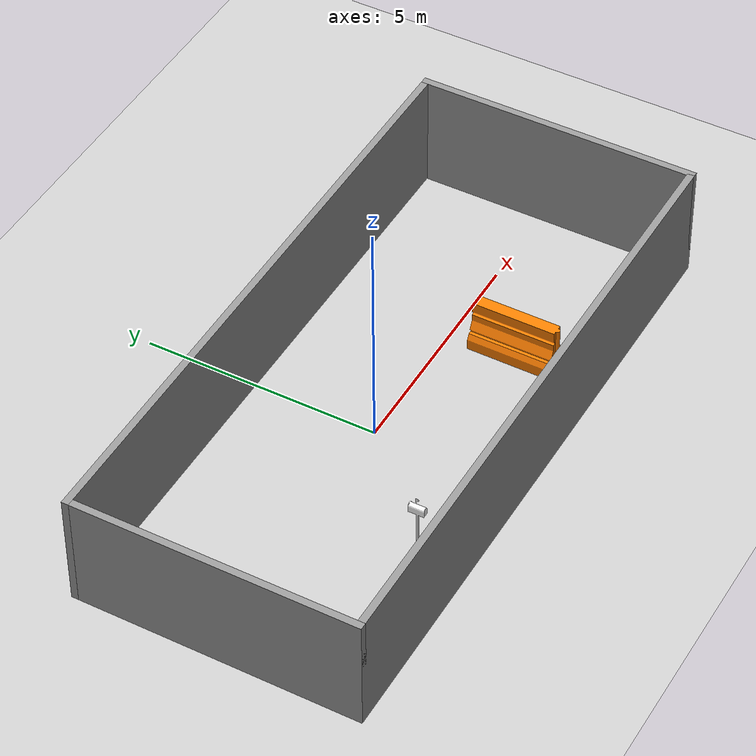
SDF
<sdf version="1.7">
 <world name="default">
  <light name="sun" type="directional">
   <pose>0 0 10 0 -0 0</pose>
   <diffuse>0.8 0.8 0.8 1</diffuse>
   <specular>0.2 0.2 0.2 1</specular>
   <attenuation>
    <range>1000</range>
    <constant>0.9</constant>
    <linear>0.01</linear>
    <quadratic>0.001</quadratic>
   </attenuation>
   <direction>-0.5 0.1 -0.9</direction>
   <spot><inner_angle>0</inner_angle><outer_angle>0</outer_angle><falloff>0</falloff></spot>
  </light>
  <model name="ground_plane">
   <static>1</static>
   <link name="link">
    <collision name="collision">
     <geometry><plane><normal>0 0 1</normal><size>100 100</size></plane></geometry>
     <surface>
      <contact><collide_bitmask>65535</collide_bitmask></contact>
      <friction><ode><mu>100</mu><mu2>50</mu2></ode></friction>
     </surface>
    </collision>
    <visual name="visual">
     <cast_shadows>0</cast_shadows>
     <geometry><plane><normal>0 0 1</normal><size>100 100</size></plane></geometry>
     <material>
      <script><uri>file://media/materials/scripts/gazebo.material</uri><name>Gazebo/Grey</name></script>
     </material>
    </visual>
   </link>
  </model>
  <gravity>0 0 -9.8</gravity>
  <magnetic_field>6e-06 2.3e-05 -4.2e-05</magnetic_field>
  <atmosphere type="adiabatic"/>
  <physics type="ode">
   <max_step_size>0.001</max_step_size>
   <real_time_factor>1</real_time_factor>
   <real_time_update_rate>1000</real_time_update_rate>
  </physics>
  <scene><ambient>0.4 0.4 0.4 1</ambient><background>0.7 0.7 0.7 1</background><shadows>1</shadows></scene>
  <spherical_coordinates>
   <surface_model>EARTH_WGS84</surface_model>
   <latitude_deg>0</latitude_deg>
   <longitude_deg>0</longitude_deg>
   <elevation>0</elevation>
   <heading_deg>0</heading_deg>
  </spherical_coordinates>
  <model name="NOMAL">
   <pose>0.420608 -0.234741 0 0 -0 0</pose>
   <link name="Wall_4">
    <collision name="Wall_4_Collision">
     <geometry><box><size>6 0.15 2.5</size></box></geometry>
     <pose>0 0 1.25 0 -0 0</pose>
    </collision>
    <visual name="Wall_4_Visual">
     <pose>0 0 1.25 0 -0 0</pose>
     <geometry><box><size>6 0.15 2.5</size></box></geometry>
     <material>
      <script><uri>file://media/materials/scripts/gazebo.material</uri><name>Gazebo/Grey</name></script>
      <ambient>1 1 1 1</ambient>
     </material>
     <meta><layer>0</layer></meta>
    </visual>
    <pose>-6.55 0 0 0 -0 -1.5708</pose>
   </link>
   <link name="Wall_5">
    <collision name="Wall_5_Collision">
     <geometry><box><size>13.25 0.15 2.5</size></box></geometry>
     <pose>0 0 1.25 0 -0 0</pose>
    </collision>
    <visual name="Wall_5_Visual">
     <pose>0 0 1.25 0 -0 0</pose>
     <geometry><box><size>13.25 0.15 2.5</size></box></geometry>
     <material>
      <script><uri>file://media/materials/scripts/gazebo.material</uri><name>Gazebo/Grey</name></script>
      <ambient>1 1 1 1</ambient>
     </material>
     <meta><layer>0</layer></meta>
    </visual>
    <pose>0 -2.925 0 0 -0 0</pose>
   </link>
   <link name="Wall_6">
    <collision name="Wall_6_Collision">
     <geometry><box><size>6 0.15 2.5</size></box></geometry>
     <pose>0 0 1.25 0 -0 0</pose>
    </collision>
    <visual name="Wall_6_Visual">
     <pose>0 0 1.25 0 -0 0</pose>
     <geometry><box><size>6 0.15 2.5</size></box></geometry>
     <material>
      <script><uri>file://media/materials/scripts/gazebo.material</uri><name>Gazebo/Grey</name></script>
      <ambient>1 1 1 1</ambient>
     </material>
     <meta><layer>0</layer></meta>
    </visual>
    <pose>6.55 0 0 0 -0 1.5708</pose>
   </link>
   <link name="Wall_7">
    <collision name="Wall_7_Collision">
     <geometry><box><size>13.25 0.15 2.5</size></box></geometry>
     <pose>0 0 1.25 0 -0 0</pose>
    </collision>
    <visual name="Wall_7_Visual">
     <pose>0 0 1.25 0 -0 0</pose>
     <geometry><box><size>13.25 0.15 2.5</size></box></geometry>
     <material>
      <script><uri>file://media/materials/scripts/gazebo.material</uri><name>Gazebo/Grey</name></script>
      <ambient>1 1 1 1</ambient>
     </material>
     <meta><layer>0</layer></meta>
    </visual>
    <pose>0 2.925 0 0 -0 3.14159</pose>
   </link>
   <static>1</static>
  </model>
  <model name="drc_practice_organge_jersey_barrier">
   <static>1</static>
   <link name="link">
    <visual name="visual">
     <geometry>
      <mesh><uri>model://drc_practice_orange_jersey_barrier/meshes/jersey_barrier.dae</uri></mesh>
     </geometry>
    </visual>
    <collision name="collision">
     <geometry>
      <mesh><uri>model://drc_practice_orange_jersey_barrier/meshes/jersey_barrier.dae</uri></mesh>
     </geometry>
    </collision>
   </link>
   <pose>3.16884 -1.34213 0 0 -0 0</pose>
  </model>
  <model name="Mailbox">
   <link name="link">
    <collision name="collision">
     <geometry><mesh><uri>model://mailbox/meshes/mailbox.dae</uri></mesh></geometry>
    </collision>
    <visual name="visual">
     <geometry><mesh><uri>model://mailbox/meshes/mailbox.dae</uri></mesh></geometry>
     <material>
      <script>
       <uri>model://mailbox/materials/scripts</uri>
       <uri>model://mailbox/materials/textures</uri>
       <name>Mailbox/Diffuse</name>
      </script>
     </material>
    </visual>
    <inertial>
     <inertia><ixx>1</ixx><ixy>0</ixy><ixz>0</ixz><iyy>1</iyy><iyz>0</iyz><izz>1</izz></inertia>
     <mass>1</mass>
    </inertial>
   </link>
   <pose>-2.03016 -2.03764 0 -7e-06 -0 0</pose>
  </model>
 </world>
</sdf>
